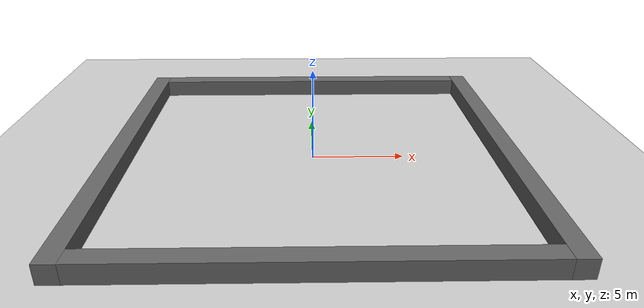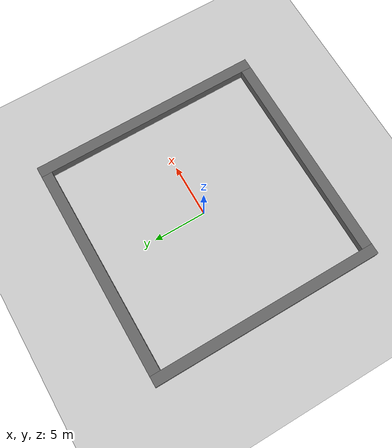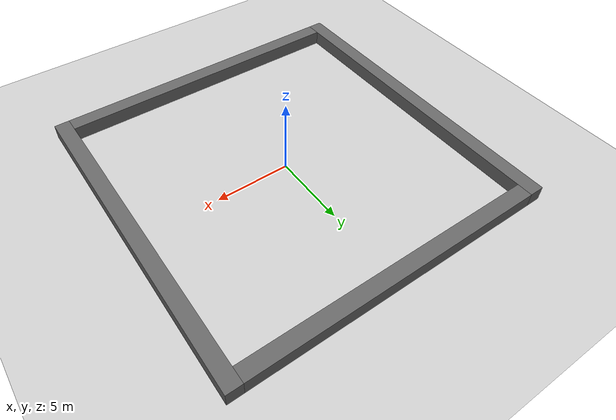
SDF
<sdf version="1.4">
 <world name="new">
  <scene><ambient>0.5 0.5 0.5 1.0</ambient><shadows>0</shadows></scene>
  <include>
   <uri>model://sun</uri>
   <pose>0.0 0.0 15.0 0 0 0</pose>
   <cast_shadows>false</cast_shadows>
   <attenuation>
    <constant>0.5</constant>
    <linear>0.01</linear>
    <quadratic>0.0</quadratic>
    <range>100</range>
   </attenuation>
  </include>
  <light type="point" name="Light">
   <pose>0 0 15 0 0 0</pose>
   <diffuse>.9 .9 .9 1</diffuse>
   <specular>.1 .1 .1 1</specular>
   <attenuation>
    <constant>0.5</constant>
    <linear>0.01</linear>
    <quadratic>0.0</quadratic>
    <range>50</range>
   </attenuation>
   <direction>0 0 -1</direction>
   <cast_shadows>false</cast_shadows>
  </light>
  <model name="Ground plane">
   <static>1</static>
   <link name="link">
    <collision name="collision">
     <geometry><plane><normal>0 0 1</normal><size>25 25</size></plane></geometry>
     <surface><friction><ode><mu>100</mu><mu2>50</mu2></ode></friction></surface>
    </collision>
    <visual name="visual">
     <cast_shadows>0</cast_shadows>
     <geometry><plane><normal>0 0 1</normal><size>25 25</size></plane></geometry>
    </visual>
   </link>
  </model>
  <model name="Wall-N">
   <link name="link">
    <visual name="visual">
     <geometry><box><size>20 1 1</size></box></geometry>
     <material><ambient>0.6 0.6 0.6 1</ambient><diffuse>0.4 0.4 0.4 1</diffuse></material>
    </visual>
    <collision name="collision"><geometry><box><size>20 1 1</size></box></geometry></collision>
   </link>
   <static>1</static>
   <pose>0 10.5 0.5 0 -0 0</pose>
  </model>
  <model name="Wall-E">
   <link name="link">
    <visual name="visual">
     <geometry><box><size>1 22 1</size></box></geometry>
     <material><ambient>0.6 0.6 0.6 1</ambient><diffuse>0.4 0.4 0.4 1</diffuse></material>
    </visual>
    <collision name="collision"><geometry><box><size>1 22 1</size></box></geometry></collision>
   </link>
   <static>1</static>
   <pose>10.5 0 0.5 0 -0 0</pose>
  </model>
  <model name="Wall-S">
   <link name="link">
    <visual name="visual">
     <geometry><box><size>20 1 1</size></box></geometry>
     <material><ambient>0.6 0.6 0.6 1</ambient><diffuse>0.4 0.4 0.4 1</diffuse></material>
    </visual>
    <collision name="collision"><geometry><box><size>20 1 1</size></box></geometry></collision>
   </link>
   <static>1</static>
   <pose>0 -10.5 0.5 0 -0 0</pose>
  </model>
  <model name="Wall-W">
   <link name="link">
    <visual name="visual">
     <geometry><box><size>1 22 1</size></box></geometry>
     <material><ambient>0.6 0.6 0.6 1</ambient><diffuse>0.4 0.4 0.4 1</diffuse></material>
    </visual>
    <collision name="collision"><geometry><box><size>1 22 1</size></box></geometry></collision>
   </link>
   <static>1</static>
   <pose>-10.5 0 0.5 0 -0 0</pose>
  </model>
 </world>
</sdf>
